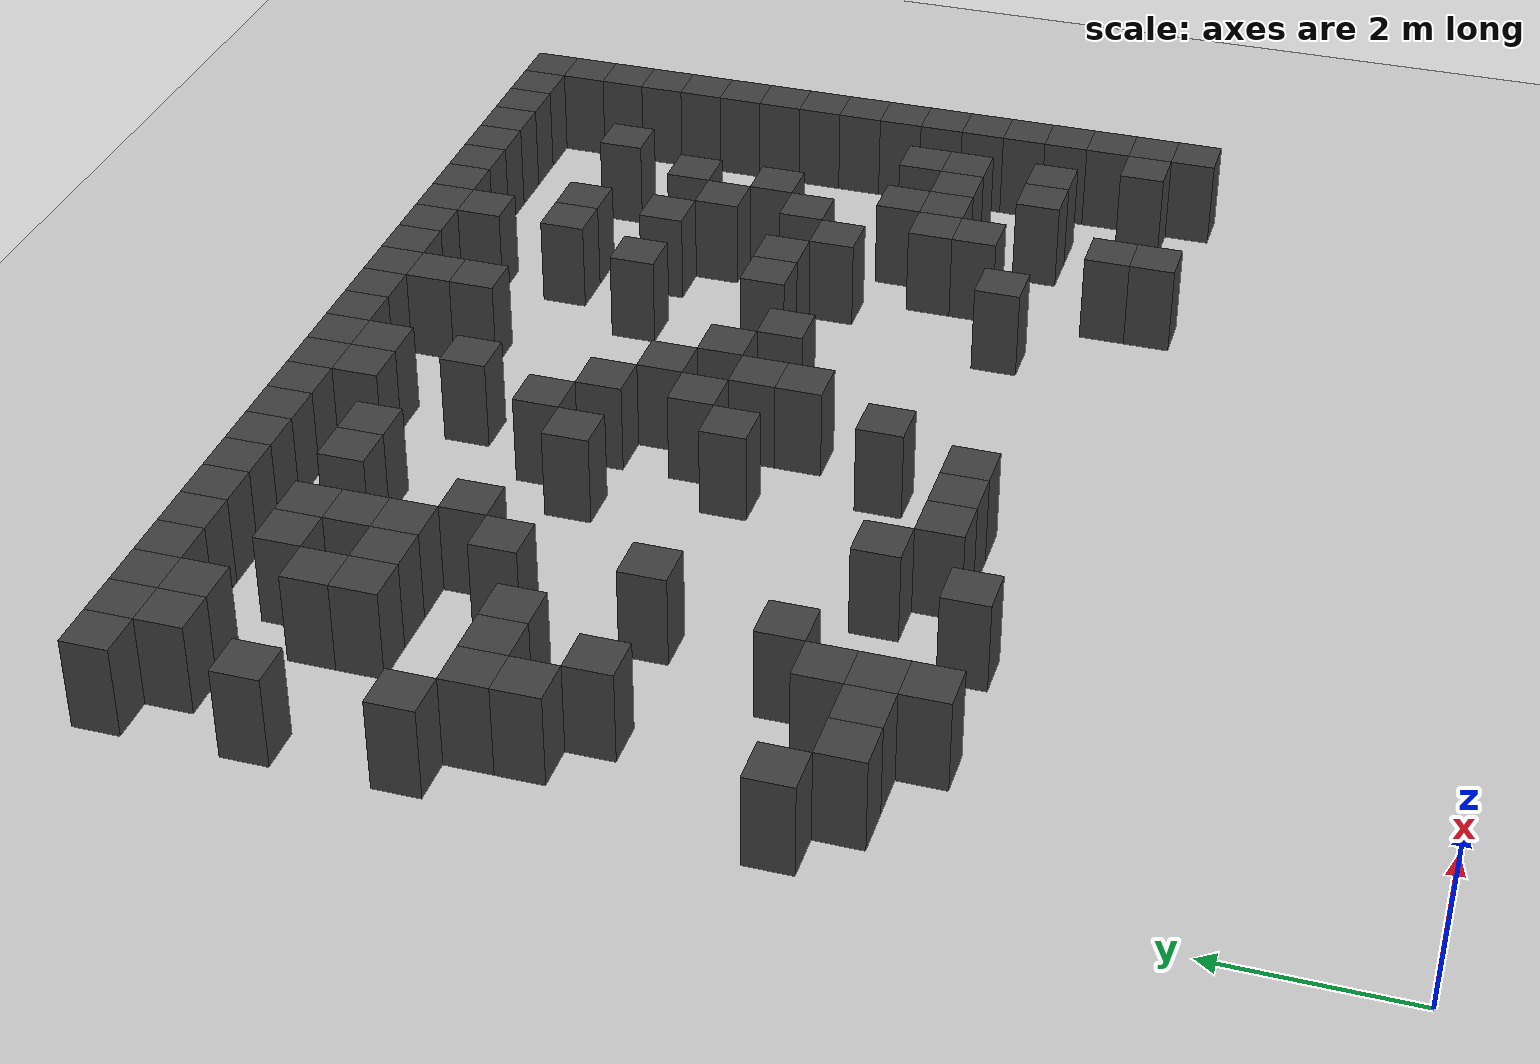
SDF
<sdf version="1.7">
 <world name="map_4492">
  <model name="ground_plane">
   <static>true</static>
   <link name="link">
    <collision name="collision">
     <geometry><plane><normal>0 0 1</normal><size>200 200</size></plane></geometry>
    </collision>
    <visual name="visual">
     <geometry><plane><normal>0 0 1</normal><size>200 200</size></plane></geometry>
     <material><ambient>0.8 0.8 0.8 1</ambient><diffuse>0.8 0.8 0.8 1</diffuse></material>
    </visual>
   </link>
  </model>
  <model name="maze_environment">
   <static>true</static>
   <link name="wall_25">
    <pose>0.250 12.250 0.500 0 0 0</pose>
    <collision name="col"><geometry><box><size>0.5 0.5 1.0</size></box></geometry></collision>
    <visual name="vis">
     <geometry><box><size>0.5 0.5 1.0</size></box></geometry>
     <material><ambient>0.15 0.15 0.15 1</ambient><diffuse>0.25 0.25 0.25 1</diffuse></material>
    </visual>
   </link>
   <link name="wall_26">
    <pose>0.750 12.250 0.500 0 0 0</pose>
    <collision name="col"><geometry><box><size>0.5 0.5 1.0</size></box></geometry></collision>
    <visual name="vis">
     <geometry><box><size>0.5 0.5 1.0</size></box></geometry>
     <material><ambient>0.15 0.15 0.15 1</ambient><diffuse>0.25 0.25 0.25 1</diffuse></material>
    </visual>
   </link>
   <link name="wall_27">
    <pose>1.250 12.250 0.500 0 0 0</pose>
    <collision name="col"><geometry><box><size>0.5 0.5 1.0</size></box></geometry></collision>
    <visual name="vis">
     <geometry><box><size>0.5 0.5 1.0</size></box></geometry>
     <material><ambient>0.15 0.15 0.15 1</ambient><diffuse>0.25 0.25 0.25 1</diffuse></material>
    </visual>
   </link>
   <link name="wall_28">
    <pose>1.750 12.250 0.500 0 0 0</pose>
    <collision name="col"><geometry><box><size>0.5 0.5 1.0</size></box></geometry></collision>
    <visual name="vis">
     <geometry><box><size>0.5 0.5 1.0</size></box></geometry>
     <material><ambient>0.15 0.15 0.15 1</ambient><diffuse>0.25 0.25 0.25 1</diffuse></material>
    </visual>
   </link>
   <link name="wall_29">
    <pose>2.250 12.250 0.500 0 0 0</pose>
    <collision name="col"><geometry><box><size>0.5 0.5 1.0</size></box></geometry></collision>
    <visual name="vis">
     <geometry><box><size>0.5 0.5 1.0</size></box></geometry>
     <material><ambient>0.15 0.15 0.15 1</ambient><diffuse>0.25 0.25 0.25 1</diffuse></material>
    </visual>
   </link>
   <link name="wall_30">
    <pose>2.750 12.250 0.500 0 0 0</pose>
    <collision name="col"><geometry><box><size>0.5 0.5 1.0</size></box></geometry></collision>
    <visual name="vis">
     <geometry><box><size>0.5 0.5 1.0</size></box></geometry>
     <material><ambient>0.15 0.15 0.15 1</ambient><diffuse>0.25 0.25 0.25 1</diffuse></material>
    </visual>
   </link>
   <link name="wall_31">
    <pose>3.250 12.250 0.500 0 0 0</pose>
    <collision name="col"><geometry><box><size>0.5 0.5 1.0</size></box></geometry></collision>
    <visual name="vis">
     <geometry><box><size>0.5 0.5 1.0</size></box></geometry>
     <material><ambient>0.15 0.15 0.15 1</ambient><diffuse>0.25 0.25 0.25 1</diffuse></material>
    </visual>
   </link>
   <link name="wall_32">
    <pose>3.750 12.250 0.500 0 0 0</pose>
    <collision name="col"><geometry><box><size>0.5 0.5 1.0</size></box></geometry></collision>
    <visual name="vis">
     <geometry><box><size>0.5 0.5 1.0</size></box></geometry>
     <material><ambient>0.15 0.15 0.15 1</ambient><diffuse>0.25 0.25 0.25 1</diffuse></material>
    </visual>
   </link>
   <link name="wall_33">
    <pose>4.250 12.250 0.500 0 0 0</pose>
    <collision name="col"><geometry><box><size>0.5 0.5 1.0</size></box></geometry></collision>
    <visual name="vis">
     <geometry><box><size>0.5 0.5 1.0</size></box></geometry>
     <material><ambient>0.15 0.15 0.15 1</ambient><diffuse>0.25 0.25 0.25 1</diffuse></material>
    </visual>
   </link>
   <link name="wall_34">
    <pose>4.750 12.250 0.500 0 0 0</pose>
    <collision name="col"><geometry><box><size>0.5 0.5 1.0</size></box></geometry></collision>
    <visual name="vis">
     <geometry><box><size>0.5 0.5 1.0</size></box></geometry>
     <material><ambient>0.15 0.15 0.15 1</ambient><diffuse>0.25 0.25 0.25 1</diffuse></material>
    </visual>
   </link>
   <link name="wall_35">
    <pose>5.250 12.250 0.500 0 0 0</pose>
    <collision name="col"><geometry><box><size>0.5 0.5 1.0</size></box></geometry></collision>
    <visual name="vis">
     <geometry><box><size>0.5 0.5 1.0</size></box></geometry>
     <material><ambient>0.15 0.15 0.15 1</ambient><diffuse>0.25 0.25 0.25 1</diffuse></material>
    </visual>
   </link>
   <link name="wall_36">
    <pose>5.750 12.250 0.500 0 0 0</pose>
    <collision name="col"><geometry><box><size>0.5 0.5 1.0</size></box></geometry></collision>
    <visual name="vis">
     <geometry><box><size>0.5 0.5 1.0</size></box></geometry>
     <material><ambient>0.15 0.15 0.15 1</ambient><diffuse>0.25 0.25 0.25 1</diffuse></material>
    </visual>
   </link>
   <link name="wall_37">
    <pose>6.250 12.250 0.500 0 0 0</pose>
    <collision name="col"><geometry><box><size>0.5 0.5 1.0</size></box></geometry></collision>
    <visual name="vis">
     <geometry><box><size>0.5 0.5 1.0</size></box></geometry>
     <material><ambient>0.15 0.15 0.15 1</ambient><diffuse>0.25 0.25 0.25 1</diffuse></material>
    </visual>
   </link>
   <link name="wall_38">
    <pose>6.750 12.250 0.500 0 0 0</pose>
    <collision name="col"><geometry><box><size>0.5 0.5 1.0</size></box></geometry></collision>
    <visual name="vis">
     <geometry><box><size>0.5 0.5 1.0</size></box></geometry>
     <material><ambient>0.15 0.15 0.15 1</ambient><diffuse>0.25 0.25 0.25 1</diffuse></material>
    </visual>
   </link>
   <link name="wall_39">
    <pose>7.250 12.250 0.500 0 0 0</pose>
    <collision name="col"><geometry><box><size>0.5 0.5 1.0</size></box></geometry></collision>
    <visual name="vis">
     <geometry><box><size>0.5 0.5 1.0</size></box></geometry>
     <material><ambient>0.15 0.15 0.15 1</ambient><diffuse>0.25 0.25 0.25 1</diffuse></material>
    </visual>
   </link>
   <link name="wall_40">
    <pose>7.750 12.250 0.500 0 0 0</pose>
    <collision name="col"><geometry><box><size>0.5 0.5 1.0</size></box></geometry></collision>
    <visual name="vis">
     <geometry><box><size>0.5 0.5 1.0</size></box></geometry>
     <material><ambient>0.15 0.15 0.15 1</ambient><diffuse>0.25 0.25 0.25 1</diffuse></material>
    </visual>
   </link>
   <link name="wall_41">
    <pose>8.250 12.250 0.500 0 0 0</pose>
    <collision name="col"><geometry><box><size>0.5 0.5 1.0</size></box></geometry></collision>
    <visual name="vis">
     <geometry><box><size>0.5 0.5 1.0</size></box></geometry>
     <material><ambient>0.15 0.15 0.15 1</ambient><diffuse>0.25 0.25 0.25 1</diffuse></material>
    </visual>
   </link>
   <link name="wall_42">
    <pose>8.750 12.250 0.500 0 0 0</pose>
    <collision name="col"><geometry><box><size>0.5 0.5 1.0</size></box></geometry></collision>
    <visual name="vis">
     <geometry><box><size>0.5 0.5 1.0</size></box></geometry>
     <material><ambient>0.15 0.15 0.15 1</ambient><diffuse>0.25 0.25 0.25 1</diffuse></material>
    </visual>
   </link>
   <link name="wall_43">
    <pose>9.250 12.250 0.500 0 0 0</pose>
    <collision name="col"><geometry><box><size>0.5 0.5 1.0</size></box></geometry></collision>
    <visual name="vis">
     <geometry><box><size>0.5 0.5 1.0</size></box></geometry>
     <material><ambient>0.15 0.15 0.15 1</ambient><diffuse>0.25 0.25 0.25 1</diffuse></material>
    </visual>
   </link>
   <link name="wall_44">
    <pose>9.750 12.250 0.500 0 0 0</pose>
    <collision name="col"><geometry><box><size>0.5 0.5 1.0</size></box></geometry></collision>
    <visual name="vis">
     <geometry><box><size>0.5 0.5 1.0</size></box></geometry>
     <material><ambient>0.15 0.15 0.15 1</ambient><diffuse>0.25 0.25 0.25 1</diffuse></material>
    </visual>
   </link>
   <link name="wall_45">
    <pose>10.250 12.250 0.500 0 0 0</pose>
    <collision name="col"><geometry><box><size>0.5 0.5 1.0</size></box></geometry></collision>
    <visual name="vis">
     <geometry><box><size>0.5 0.5 1.0</size></box></geometry>
     <material><ambient>0.15 0.15 0.15 1</ambient><diffuse>0.25 0.25 0.25 1</diffuse></material>
    </visual>
   </link>
   <link name="wall_46">
    <pose>10.750 12.250 0.500 0 0 0</pose>
    <collision name="col"><geometry><box><size>0.5 0.5 1.0</size></box></geometry></collision>
    <visual name="vis">
     <geometry><box><size>0.5 0.5 1.0</size></box></geometry>
     <material><ambient>0.15 0.15 0.15 1</ambient><diffuse>0.25 0.25 0.25 1</diffuse></material>
    </visual>
   </link>
   <link name="wall_47">
    <pose>11.250 12.250 0.500 0 0 0</pose>
    <collision name="col"><geometry><box><size>0.5 0.5 1.0</size></box></geometry></collision>
    <visual name="vis">
     <geometry><box><size>0.5 0.5 1.0</size></box></geometry>
     <material><ambient>0.15 0.15 0.15 1</ambient><diffuse>0.25 0.25 0.25 1</diffuse></material>
    </visual>
   </link>
   <link name="wall_48">
    <pose>11.750 12.250 0.500 0 0 0</pose>
    <collision name="col"><geometry><box><size>0.5 0.5 1.0</size></box></geometry></collision>
    <visual name="vis">
     <geometry><box><size>0.5 0.5 1.0</size></box></geometry>
     <material><ambient>0.15 0.15 0.15 1</ambient><diffuse>0.25 0.25 0.25 1</diffuse></material>
    </visual>
   </link>
   <link name="wall_49">
    <pose>12.250 12.250 0.500 0 0 0</pose>
    <collision name="col"><geometry><box><size>0.5 0.5 1.0</size></box></geometry></collision>
    <visual name="vis">
     <geometry><box><size>0.5 0.5 1.0</size></box></geometry>
     <material><ambient>0.15 0.15 0.15 1</ambient><diffuse>0.25 0.25 0.25 1</diffuse></material>
    </visual>
   </link>
   <link name="wall_56">
    <pose>0.750 11.750 0.500 0 0 0</pose>
    <collision name="col"><geometry><box><size>0.5 0.5 1.0</size></box></geometry></collision>
    <visual name="vis">
     <geometry><box><size>0.5 0.5 1.0</size></box></geometry>
     <material><ambient>0.15 0.15 0.15 1</ambient><diffuse>0.25 0.25 0.25 1</diffuse></material>
    </visual>
   </link>
   <link name="wall_57">
    <pose>1.250 11.750 0.500 0 0 0</pose>
    <collision name="col"><geometry><box><size>0.5 0.5 1.0</size></box></geometry></collision>
    <visual name="vis">
     <geometry><box><size>0.5 0.5 1.0</size></box></geometry>
     <material><ambient>0.15 0.15 0.15 1</ambient><diffuse>0.25 0.25 0.25 1</diffuse></material>
    </visual>
   </link>
   <link name="wall_58">
    <pose>5.250 11.750 0.500 0 0 0</pose>
    <collision name="col"><geometry><box><size>0.5 0.5 1.0</size></box></geometry></collision>
    <visual name="vis">
     <geometry><box><size>0.5 0.5 1.0</size></box></geometry>
     <material><ambient>0.15 0.15 0.15 1</ambient><diffuse>0.25 0.25 0.25 1</diffuse></material>
    </visual>
   </link>
   <link name="wall_59">
    <pose>5.750 11.750 0.500 0 0 0</pose>
    <collision name="col"><geometry><box><size>0.5 0.5 1.0</size></box></geometry></collision>
    <visual name="vis">
     <geometry><box><size>0.5 0.5 1.0</size></box></geometry>
     <material><ambient>0.15 0.15 0.15 1</ambient><diffuse>0.25 0.25 0.25 1</diffuse></material>
    </visual>
   </link>
   <link name="wall_60">
    <pose>7.250 11.750 0.500 0 0 0</pose>
    <collision name="col"><geometry><box><size>0.5 0.5 1.0</size></box></geometry></collision>
    <visual name="vis">
     <geometry><box><size>0.5 0.5 1.0</size></box></geometry>
     <material><ambient>0.15 0.15 0.15 1</ambient><diffuse>0.25 0.25 0.25 1</diffuse></material>
    </visual>
   </link>
   <link name="wall_61">
    <pose>8.750 11.750 0.500 0 0 0</pose>
    <collision name="col"><geometry><box><size>0.5 0.5 1.0</size></box></geometry></collision>
    <visual name="vis">
     <geometry><box><size>0.5 0.5 1.0</size></box></geometry>
     <material><ambient>0.15 0.15 0.15 1</ambient><diffuse>0.25 0.25 0.25 1</diffuse></material>
    </visual>
   </link>
   <link name="wall_62">
    <pose>12.250 11.750 0.500 0 0 0</pose>
    <collision name="col"><geometry><box><size>0.5 0.5 1.0</size></box></geometry></collision>
    <visual name="vis">
     <geometry><box><size>0.5 0.5 1.0</size></box></geometry>
     <material><ambient>0.15 0.15 0.15 1</ambient><diffuse>0.25 0.25 0.25 1</diffuse></material>
    </visual>
   </link>
   <link name="wall_68">
    <pose>2.250 11.250 0.500 0 0 0</pose>
    <collision name="col"><geometry><box><size>0.5 0.5 1.0</size></box></geometry></collision>
    <visual name="vis">
     <geometry><box><size>0.5 0.5 1.0</size></box></geometry>
     <material><ambient>0.15 0.15 0.15 1</ambient><diffuse>0.25 0.25 0.25 1</diffuse></material>
    </visual>
   </link>
   <link name="wall_69">
    <pose>2.750 11.250 0.500 0 0 0</pose>
    <collision name="col"><geometry><box><size>0.5 0.5 1.0</size></box></geometry></collision>
    <visual name="vis">
     <geometry><box><size>0.5 0.5 1.0</size></box></geometry>
     <material><ambient>0.15 0.15 0.15 1</ambient><diffuse>0.25 0.25 0.25 1</diffuse></material>
    </visual>
   </link>
   <link name="wall_70">
    <pose>3.750 11.250 0.500 0 0 0</pose>
    <collision name="col"><geometry><box><size>0.5 0.5 1.0</size></box></geometry></collision>
    <visual name="vis">
     <geometry><box><size>0.5 0.5 1.0</size></box></geometry>
     <material><ambient>0.15 0.15 0.15 1</ambient><diffuse>0.25 0.25 0.25 1</diffuse></material>
    </visual>
   </link>
   <link name="wall_71">
    <pose>4.250 11.250 0.500 0 0 0</pose>
    <collision name="col"><geometry><box><size>0.5 0.5 1.0</size></box></geometry></collision>
    <visual name="vis">
     <geometry><box><size>0.5 0.5 1.0</size></box></geometry>
     <material><ambient>0.15 0.15 0.15 1</ambient><diffuse>0.25 0.25 0.25 1</diffuse></material>
    </visual>
   </link>
   <link name="wall_72">
    <pose>7.250 11.250 0.500 0 0 0</pose>
    <collision name="col"><geometry><box><size>0.5 0.5 1.0</size></box></geometry></collision>
    <visual name="vis">
     <geometry><box><size>0.5 0.5 1.0</size></box></geometry>
     <material><ambient>0.15 0.15 0.15 1</ambient><diffuse>0.25 0.25 0.25 1</diffuse></material>
    </visual>
   </link>
   <link name="wall_73">
    <pose>12.250 11.250 0.500 0 0 0</pose>
    <collision name="col"><geometry><box><size>0.5 0.5 1.0</size></box></geometry></collision>
    <visual name="vis">
     <geometry><box><size>0.5 0.5 1.0</size></box></geometry>
     <material><ambient>0.15 0.15 0.15 1</ambient><diffuse>0.25 0.25 0.25 1</diffuse></material>
    </visual>
   </link>
   <link name="wall_82">
    <pose>0.250 10.750 0.500 0 0 0</pose>
    <collision name="col"><geometry><box><size>0.5 0.5 1.0</size></box></geometry></collision>
    <visual name="vis">
     <geometry><box><size>0.5 0.5 1.0</size></box></geometry>
     <material><ambient>0.15 0.15 0.15 1</ambient><diffuse>0.25 0.25 0.25 1</diffuse></material>
    </visual>
   </link>
   <link name="wall_83">
    <pose>1.750 10.750 0.500 0 0 0</pose>
    <collision name="col"><geometry><box><size>0.5 0.5 1.0</size></box></geometry></collision>
    <visual name="vis">
     <geometry><box><size>0.5 0.5 1.0</size></box></geometry>
     <material><ambient>0.15 0.15 0.15 1</ambient><diffuse>0.25 0.25 0.25 1</diffuse></material>
    </visual>
   </link>
   <link name="wall_84">
    <pose>2.750 10.750 0.500 0 0 0</pose>
    <collision name="col"><geometry><box><size>0.5 0.5 1.0</size></box></geometry></collision>
    <visual name="vis">
     <geometry><box><size>0.5 0.5 1.0</size></box></geometry>
     <material><ambient>0.15 0.15 0.15 1</ambient><diffuse>0.25 0.25 0.25 1</diffuse></material>
    </visual>
   </link>
   <link name="wall_85">
    <pose>5.750 10.750 0.500 0 0 0</pose>
    <collision name="col"><geometry><box><size>0.5 0.5 1.0</size></box></geometry></collision>
    <visual name="vis">
     <geometry><box><size>0.5 0.5 1.0</size></box></geometry>
     <material><ambient>0.15 0.15 0.15 1</ambient><diffuse>0.25 0.25 0.25 1</diffuse></material>
    </visual>
   </link>
   <link name="wall_86">
    <pose>8.750 10.750 0.500 0 0 0</pose>
    <collision name="col"><geometry><box><size>0.5 0.5 1.0</size></box></geometry></collision>
    <visual name="vis">
     <geometry><box><size>0.5 0.5 1.0</size></box></geometry>
     <material><ambient>0.15 0.15 0.15 1</ambient><diffuse>0.25 0.25 0.25 1</diffuse></material>
    </visual>
   </link>
   <link name="wall_87">
    <pose>9.250 10.750 0.500 0 0 0</pose>
    <collision name="col"><geometry><box><size>0.5 0.5 1.0</size></box></geometry></collision>
    <visual name="vis">
     <geometry><box><size>0.5 0.5 1.0</size></box></geometry>
     <material><ambient>0.15 0.15 0.15 1</ambient><diffuse>0.25 0.25 0.25 1</diffuse></material>
    </visual>
   </link>
   <link name="wall_88">
    <pose>10.750 10.750 0.500 0 0 0</pose>
    <collision name="col"><geometry><box><size>0.5 0.5 1.0</size></box></geometry></collision>
    <visual name="vis">
     <geometry><box><size>0.5 0.5 1.0</size></box></geometry>
     <material><ambient>0.15 0.15 0.15 1</ambient><diffuse>0.25 0.25 0.25 1</diffuse></material>
    </visual>
   </link>
   <link name="wall_89">
    <pose>12.250 10.750 0.500 0 0 0</pose>
    <collision name="col"><geometry><box><size>0.5 0.5 1.0</size></box></geometry></collision>
    <visual name="vis">
     <geometry><box><size>0.5 0.5 1.0</size></box></geometry>
     <material><ambient>0.15 0.15 0.15 1</ambient><diffuse>0.25 0.25 0.25 1</diffuse></material>
    </visual>
   </link>
   <link name="wall_98">
    <pose>1.750 10.250 0.500 0 0 0</pose>
    <collision name="col"><geometry><box><size>0.5 0.5 1.0</size></box></geometry></collision>
    <visual name="vis">
     <geometry><box><size>0.5 0.5 1.0</size></box></geometry>
     <material><ambient>0.15 0.15 0.15 1</ambient><diffuse>0.25 0.25 0.25 1</diffuse></material>
    </visual>
   </link>
   <link name="wall_99">
    <pose>2.250 10.250 0.500 0 0 0</pose>
    <collision name="col"><geometry><box><size>0.5 0.5 1.0</size></box></geometry></collision>
    <visual name="vis">
     <geometry><box><size>0.5 0.5 1.0</size></box></geometry>
     <material><ambient>0.15 0.15 0.15 1</ambient><diffuse>0.25 0.25 0.25 1</diffuse></material>
    </visual>
   </link>
   <link name="wall_100">
    <pose>2.750 10.250 0.500 0 0 0</pose>
    <collision name="col"><geometry><box><size>0.5 0.5 1.0</size></box></geometry></collision>
    <visual name="vis">
     <geometry><box><size>0.5 0.5 1.0</size></box></geometry>
     <material><ambient>0.15 0.15 0.15 1</ambient><diffuse>0.25 0.25 0.25 1</diffuse></material>
    </visual>
   </link>
   <link name="wall_101">
    <pose>12.250 10.250 0.500 0 0 0</pose>
    <collision name="col"><geometry><box><size>0.5 0.5 1.0</size></box></geometry></collision>
    <visual name="vis">
     <geometry><box><size>0.5 0.5 1.0</size></box></geometry>
     <material><ambient>0.15 0.15 0.15 1</ambient><diffuse>0.25 0.25 0.25 1</diffuse></material>
    </visual>
   </link>
   <link name="wall_109">
    <pose>3.250 9.750 0.500 0 0 0</pose>
    <collision name="col"><geometry><box><size>0.5 0.5 1.0</size></box></geometry></collision>
    <visual name="vis">
     <geometry><box><size>0.5 0.5 1.0</size></box></geometry>
     <material><ambient>0.15 0.15 0.15 1</ambient><diffuse>0.25 0.25 0.25 1</diffuse></material>
    </visual>
   </link>
   <link name="wall_110">
    <pose>5.250 9.750 0.500 0 0 0</pose>
    <collision name="col"><geometry><box><size>0.5 0.5 1.0</size></box></geometry></collision>
    <visual name="vis">
     <geometry><box><size>0.5 0.5 1.0</size></box></geometry>
     <material><ambient>0.15 0.15 0.15 1</ambient><diffuse>0.25 0.25 0.25 1</diffuse></material>
    </visual>
   </link>
   <link name="wall_111">
    <pose>8.250 9.750 0.500 0 0 0</pose>
    <collision name="col"><geometry><box><size>0.5 0.5 1.0</size></box></geometry></collision>
    <visual name="vis">
     <geometry><box><size>0.5 0.5 1.0</size></box></geometry>
     <material><ambient>0.15 0.15 0.15 1</ambient><diffuse>0.25 0.25 0.25 1</diffuse></material>
    </visual>
   </link>
   <link name="wall_112">
    <pose>9.250 9.750 0.500 0 0 0</pose>
    <collision name="col"><geometry><box><size>0.5 0.5 1.0</size></box></geometry></collision>
    <visual name="vis">
     <geometry><box><size>0.5 0.5 1.0</size></box></geometry>
     <material><ambient>0.15 0.15 0.15 1</ambient><diffuse>0.25 0.25 0.25 1</diffuse></material>
    </visual>
   </link>
   <link name="wall_113">
    <pose>10.250 9.750 0.500 0 0 0</pose>
    <collision name="col"><geometry><box><size>0.5 0.5 1.0</size></box></geometry></collision>
    <visual name="vis">
     <geometry><box><size>0.5 0.5 1.0</size></box></geometry>
     <material><ambient>0.15 0.15 0.15 1</ambient><diffuse>0.25 0.25 0.25 1</diffuse></material>
    </visual>
   </link>
   <link name="wall_114">
    <pose>12.250 9.750 0.500 0 0 0</pose>
    <collision name="col"><geometry><box><size>0.5 0.5 1.0</size></box></geometry></collision>
    <visual name="vis">
     <geometry><box><size>0.5 0.5 1.0</size></box></geometry>
     <material><ambient>0.15 0.15 0.15 1</ambient><diffuse>0.25 0.25 0.25 1</diffuse></material>
    </visual>
   </link>
   <link name="wall_120">
    <pose>0.250 9.250 0.500 0 0 0</pose>
    <collision name="col"><geometry><box><size>0.5 0.5 1.0</size></box></geometry></collision>
    <visual name="vis">
     <geometry><box><size>0.5 0.5 1.0</size></box></geometry>
     <material><ambient>0.15 0.15 0.15 1</ambient><diffuse>0.25 0.25 0.25 1</diffuse></material>
    </visual>
   </link>
   <link name="wall_121">
    <pose>2.750 9.250 0.500 0 0 0</pose>
    <collision name="col"><geometry><box><size>0.5 0.5 1.0</size></box></geometry></collision>
    <visual name="vis">
     <geometry><box><size>0.5 0.5 1.0</size></box></geometry>
     <material><ambient>0.15 0.15 0.15 1</ambient><diffuse>0.25 0.25 0.25 1</diffuse></material>
    </visual>
   </link>
   <link name="wall_122">
    <pose>4.750 9.250 0.500 0 0 0</pose>
    <collision name="col"><geometry><box><size>0.5 0.5 1.0</size></box></geometry></collision>
    <visual name="vis">
     <geometry><box><size>0.5 0.5 1.0</size></box></geometry>
     <material><ambient>0.15 0.15 0.15 1</ambient><diffuse>0.25 0.25 0.25 1</diffuse></material>
    </visual>
   </link>
   <link name="wall_123">
    <pose>5.750 9.250 0.500 0 0 0</pose>
    <collision name="col"><geometry><box><size>0.5 0.5 1.0</size></box></geometry></collision>
    <visual name="vis">
     <geometry><box><size>0.5 0.5 1.0</size></box></geometry>
     <material><ambient>0.15 0.15 0.15 1</ambient><diffuse>0.25 0.25 0.25 1</diffuse></material>
    </visual>
   </link>
   <link name="wall_124">
    <pose>9.750 9.250 0.500 0 0 0</pose>
    <collision name="col"><geometry><box><size>0.5 0.5 1.0</size></box></geometry></collision>
    <visual name="vis">
     <geometry><box><size>0.5 0.5 1.0</size></box></geometry>
     <material><ambient>0.15 0.15 0.15 1</ambient><diffuse>0.25 0.25 0.25 1</diffuse></material>
    </visual>
   </link>
   <link name="wall_125">
    <pose>12.250 9.250 0.500 0 0 0</pose>
    <collision name="col"><geometry><box><size>0.5 0.5 1.0</size></box></geometry></collision>
    <visual name="vis">
     <geometry><box><size>0.5 0.5 1.0</size></box></geometry>
     <material><ambient>0.15 0.15 0.15 1</ambient><diffuse>0.25 0.25 0.25 1</diffuse></material>
    </visual>
   </link>
   <link name="wall_134">
    <pose>0.750 8.750 0.500 0 0 0</pose>
    <collision name="col"><geometry><box><size>0.5 0.5 1.0</size></box></geometry></collision>
    <visual name="vis">
     <geometry><box><size>0.5 0.5 1.0</size></box></geometry>
     <material><ambient>0.15 0.15 0.15 1</ambient><diffuse>0.25 0.25 0.25 1</diffuse></material>
    </visual>
   </link>
   <link name="wall_135">
    <pose>1.250 8.750 0.500 0 0 0</pose>
    <collision name="col"><geometry><box><size>0.5 0.5 1.0</size></box></geometry></collision>
    <visual name="vis">
     <geometry><box><size>0.5 0.5 1.0</size></box></geometry>
     <material><ambient>0.15 0.15 0.15 1</ambient><diffuse>0.25 0.25 0.25 1</diffuse></material>
    </visual>
   </link>
   <link name="wall_136">
    <pose>1.750 8.750 0.500 0 0 0</pose>
    <collision name="col"><geometry><box><size>0.5 0.5 1.0</size></box></geometry></collision>
    <visual name="vis">
     <geometry><box><size>0.5 0.5 1.0</size></box></geometry>
     <material><ambient>0.15 0.15 0.15 1</ambient><diffuse>0.25 0.25 0.25 1</diffuse></material>
    </visual>
   </link>
   <link name="wall_137">
    <pose>6.250 8.750 0.500 0 0 0</pose>
    <collision name="col"><geometry><box><size>0.5 0.5 1.0</size></box></geometry></collision>
    <visual name="vis">
     <geometry><box><size>0.5 0.5 1.0</size></box></geometry>
     <material><ambient>0.15 0.15 0.15 1</ambient><diffuse>0.25 0.25 0.25 1</diffuse></material>
    </visual>
   </link>
   <link name="wall_138">
    <pose>10.250 8.750 0.500 0 0 0</pose>
    <collision name="col"><geometry><box><size>0.5 0.5 1.0</size></box></geometry></collision>
    <visual name="vis">
     <geometry><box><size>0.5 0.5 1.0</size></box></geometry>
     <material><ambient>0.15 0.15 0.15 1</ambient><diffuse>0.25 0.25 0.25 1</diffuse></material>
    </visual>
   </link>
   <link name="wall_139">
    <pose>12.250 8.750 0.500 0 0 0</pose>
    <collision name="col"><geometry><box><size>0.5 0.5 1.0</size></box></geometry></collision>
    <visual name="vis">
     <geometry><box><size>0.5 0.5 1.0</size></box></geometry>
     <material><ambient>0.15 0.15 0.15 1</ambient><diffuse>0.25 0.25 0.25 1</diffuse></material>
    </visual>
   </link>
   <link name="wall_149">
    <pose>0.750 8.250 0.500 0 0 0</pose>
    <collision name="col"><geometry><box><size>0.5 0.5 1.0</size></box></geometry></collision>
    <visual name="vis">
     <geometry><box><size>0.5 0.5 1.0</size></box></geometry>
     <material><ambient>0.15 0.15 0.15 1</ambient><diffuse>0.25 0.25 0.25 1</diffuse></material>
    </visual>
   </link>
   <link name="wall_150">
    <pose>5.750 8.250 0.500 0 0 0</pose>
    <collision name="col"><geometry><box><size>0.5 0.5 1.0</size></box></geometry></collision>
    <visual name="vis">
     <geometry><box><size>0.5 0.5 1.0</size></box></geometry>
     <material><ambient>0.15 0.15 0.15 1</ambient><diffuse>0.25 0.25 0.25 1</diffuse></material>
    </visual>
   </link>
   <link name="wall_151">
    <pose>6.750 8.250 0.500 0 0 0</pose>
    <collision name="col"><geometry><box><size>0.5 0.5 1.0</size></box></geometry></collision>
    <visual name="vis">
     <geometry><box><size>0.5 0.5 1.0</size></box></geometry>
     <material><ambient>0.15 0.15 0.15 1</ambient><diffuse>0.25 0.25 0.25 1</diffuse></material>
    </visual>
   </link>
   <link name="wall_152">
    <pose>8.250 8.250 0.500 0 0 0</pose>
    <collision name="col"><geometry><box><size>0.5 0.5 1.0</size></box></geometry></collision>
    <visual name="vis">
     <geometry><box><size>0.5 0.5 1.0</size></box></geometry>
     <material><ambient>0.15 0.15 0.15 1</ambient><diffuse>0.25 0.25 0.25 1</diffuse></material>
    </visual>
   </link>
   <link name="wall_153">
    <pose>8.750 8.250 0.500 0 0 0</pose>
    <collision name="col"><geometry><box><size>0.5 0.5 1.0</size></box></geometry></collision>
    <visual name="vis">
     <geometry><box><size>0.5 0.5 1.0</size></box></geometry>
     <material><ambient>0.15 0.15 0.15 1</ambient><diffuse>0.25 0.25 0.25 1</diffuse></material>
    </visual>
   </link>
   <link name="wall_154">
    <pose>9.750 8.250 0.500 0 0 0</pose>
    <collision name="col"><geometry><box><size>0.5 0.5 1.0</size></box></geometry></collision>
    <visual name="vis">
     <geometry><box><size>0.5 0.5 1.0</size></box></geometry>
     <material><ambient>0.15 0.15 0.15 1</ambient><diffuse>0.25 0.25 0.25 1</diffuse></material>
    </visual>
   </link>
   <link name="wall_155">
    <pose>12.250 8.250 0.500 0 0 0</pose>
    <collision name="col"><geometry><box><size>0.5 0.5 1.0</size></box></geometry></collision>
    <visual name="vis">
     <geometry><box><size>0.5 0.5 1.0</size></box></geometry>
     <material><ambient>0.15 0.15 0.15 1</ambient><diffuse>0.25 0.25 0.25 1</diffuse></material>
    </visual>
   </link>
   <link name="wall_163">
    <pose>1.250 7.750 0.500 0 0 0</pose>
    <collision name="col"><geometry><box><size>0.5 0.5 1.0</size></box></geometry></collision>
    <visual name="vis">
     <geometry><box><size>0.5 0.5 1.0</size></box></geometry>
     <material><ambient>0.15 0.15 0.15 1</ambient><diffuse>0.25 0.25 0.25 1</diffuse></material>
    </visual>
   </link>
   <link name="wall_164">
    <pose>2.750 7.750 0.500 0 0 0</pose>
    <collision name="col"><geometry><box><size>0.5 0.5 1.0</size></box></geometry></collision>
    <visual name="vis">
     <geometry><box><size>0.5 0.5 1.0</size></box></geometry>
     <material><ambient>0.15 0.15 0.15 1</ambient><diffuse>0.25 0.25 0.25 1</diffuse></material>
    </visual>
   </link>
   <link name="wall_165">
    <pose>5.250 7.750 0.500 0 0 0</pose>
    <collision name="col"><geometry><box><size>0.5 0.5 1.0</size></box></geometry></collision>
    <visual name="vis">
     <geometry><box><size>0.5 0.5 1.0</size></box></geometry>
     <material><ambient>0.15 0.15 0.15 1</ambient><diffuse>0.25 0.25 0.25 1</diffuse></material>
    </visual>
   </link>
   <link name="wall_166">
    <pose>6.250 7.750 0.500 0 0 0</pose>
    <collision name="col"><geometry><box><size>0.5 0.5 1.0</size></box></geometry></collision>
    <visual name="vis">
     <geometry><box><size>0.5 0.5 1.0</size></box></geometry>
     <material><ambient>0.15 0.15 0.15 1</ambient><diffuse>0.25 0.25 0.25 1</diffuse></material>
    </visual>
   </link>
   <link name="wall_167">
    <pose>7.250 7.750 0.500 0 0 0</pose>
    <collision name="col"><geometry><box><size>0.5 0.5 1.0</size></box></geometry></collision>
    <visual name="vis">
     <geometry><box><size>0.5 0.5 1.0</size></box></geometry>
     <material><ambient>0.15 0.15 0.15 1</ambient><diffuse>0.25 0.25 0.25 1</diffuse></material>
    </visual>
   </link>
   <link name="wall_168">
    <pose>9.250 7.750 0.500 0 0 0</pose>
    <collision name="col"><geometry><box><size>0.5 0.5 1.0</size></box></geometry></collision>
    <visual name="vis">
     <geometry><box><size>0.5 0.5 1.0</size></box></geometry>
     <material><ambient>0.15 0.15 0.15 1</ambient><diffuse>0.25 0.25 0.25 1</diffuse></material>
    </visual>
   </link>
   <link name="wall_169">
    <pose>12.250 7.750 0.500 0 0 0</pose>
    <collision name="col"><geometry><box><size>0.5 0.5 1.0</size></box></geometry></collision>
    <visual name="vis">
     <geometry><box><size>0.5 0.5 1.0</size></box></geometry>
     <material><ambient>0.15 0.15 0.15 1</ambient><diffuse>0.25 0.25 0.25 1</diffuse></material>
    </visual>
   </link>
   <link name="wall_175">
    <pose>6.250 7.250 0.500 0 0 0</pose>
    <collision name="col"><geometry><box><size>0.5 0.5 1.0</size></box></geometry></collision>
    <visual name="vis">
     <geometry><box><size>0.5 0.5 1.0</size></box></geometry>
     <material><ambient>0.15 0.15 0.15 1</ambient><diffuse>0.25 0.25 0.25 1</diffuse></material>
    </visual>
   </link>
   <link name="wall_176">
    <pose>10.250 7.250 0.500 0 0 0</pose>
    <collision name="col"><geometry><box><size>0.5 0.5 1.0</size></box></geometry></collision>
    <visual name="vis">
     <geometry><box><size>0.5 0.5 1.0</size></box></geometry>
     <material><ambient>0.15 0.15 0.15 1</ambient><diffuse>0.25 0.25 0.25 1</diffuse></material>
    </visual>
   </link>
   <link name="wall_177">
    <pose>11.250 7.250 0.500 0 0 0</pose>
    <collision name="col"><geometry><box><size>0.5 0.5 1.0</size></box></geometry></collision>
    <visual name="vis">
     <geometry><box><size>0.5 0.5 1.0</size></box></geometry>
     <material><ambient>0.15 0.15 0.15 1</ambient><diffuse>0.25 0.25 0.25 1</diffuse></material>
    </visual>
   </link>
   <link name="wall_178">
    <pose>12.250 7.250 0.500 0 0 0</pose>
    <collision name="col"><geometry><box><size>0.5 0.5 1.0</size></box></geometry></collision>
    <visual name="vis">
     <geometry><box><size>0.5 0.5 1.0</size></box></geometry>
     <material><ambient>0.15 0.15 0.15 1</ambient><diffuse>0.25 0.25 0.25 1</diffuse></material>
    </visual>
   </link>
   <link name="wall_183">
    <pose>9.750 6.750 0.500 0 0 0</pose>
    <collision name="col"><geometry><box><size>0.5 0.5 1.0</size></box></geometry></collision>
    <visual name="vis">
     <geometry><box><size>0.5 0.5 1.0</size></box></geometry>
     <material><ambient>0.15 0.15 0.15 1</ambient><diffuse>0.25 0.25 0.25 1</diffuse></material>
    </visual>
   </link>
   <link name="wall_184">
    <pose>10.250 6.750 0.500 0 0 0</pose>
    <collision name="col"><geometry><box><size>0.5 0.5 1.0</size></box></geometry></collision>
    <visual name="vis">
     <geometry><box><size>0.5 0.5 1.0</size></box></geometry>
     <material><ambient>0.15 0.15 0.15 1</ambient><diffuse>0.25 0.25 0.25 1</diffuse></material>
    </visual>
   </link>
   <link name="wall_185">
    <pose>10.750 6.750 0.500 0 0 0</pose>
    <collision name="col"><geometry><box><size>0.5 0.5 1.0</size></box></geometry></collision>
    <visual name="vis">
     <geometry><box><size>0.5 0.5 1.0</size></box></geometry>
     <material><ambient>0.15 0.15 0.15 1</ambient><diffuse>0.25 0.25 0.25 1</diffuse></material>
    </visual>
   </link>
   <link name="wall_186">
    <pose>11.250 6.750 0.500 0 0 0</pose>
    <collision name="col"><geometry><box><size>0.5 0.5 1.0</size></box></geometry></collision>
    <visual name="vis">
     <geometry><box><size>0.5 0.5 1.0</size></box></geometry>
     <material><ambient>0.15 0.15 0.15 1</ambient><diffuse>0.25 0.25 0.25 1</diffuse></material>
    </visual>
   </link>
   <link name="wall_187">
    <pose>12.250 6.750 0.500 0 0 0</pose>
    <collision name="col"><geometry><box><size>0.5 0.5 1.0</size></box></geometry></collision>
    <visual name="vis">
     <geometry><box><size>0.5 0.5 1.0</size></box></geometry>
     <material><ambient>0.15 0.15 0.15 1</ambient><diffuse>0.25 0.25 0.25 1</diffuse></material>
    </visual>
   </link>
   <link name="wall_196">
    <pose>2.250 6.250 0.500 0 0 0</pose>
    <collision name="col"><geometry><box><size>0.5 0.5 1.0</size></box></geometry></collision>
    <visual name="vis">
     <geometry><box><size>0.5 0.5 1.0</size></box></geometry>
     <material><ambient>0.15 0.15 0.15 1</ambient><diffuse>0.25 0.25 0.25 1</diffuse></material>
    </visual>
   </link>
   <link name="wall_197">
    <pose>5.750 6.250 0.500 0 0 0</pose>
    <collision name="col"><geometry><box><size>0.5 0.5 1.0</size></box></geometry></collision>
    <visual name="vis">
     <geometry><box><size>0.5 0.5 1.0</size></box></geometry>
     <material><ambient>0.15 0.15 0.15 1</ambient><diffuse>0.25 0.25 0.25 1</diffuse></material>
    </visual>
   </link>
   <link name="wall_198">
    <pose>9.750 6.250 0.500 0 0 0</pose>
    <collision name="col"><geometry><box><size>0.5 0.5 1.0</size></box></geometry></collision>
    <visual name="vis">
     <geometry><box><size>0.5 0.5 1.0</size></box></geometry>
     <material><ambient>0.15 0.15 0.15 1</ambient><diffuse>0.25 0.25 0.25 1</diffuse></material>
    </visual>
   </link>
   <link name="wall_199">
    <pose>12.250 6.250 0.500 0 0 0</pose>
    <collision name="col"><geometry><box><size>0.5 0.5 1.0</size></box></geometry></collision>
    <visual name="vis">
     <geometry><box><size>0.5 0.5 1.0</size></box></geometry>
     <material><ambient>0.15 0.15 0.15 1</ambient><diffuse>0.25 0.25 0.25 1</diffuse></material>
    </visual>
   </link>
   <link name="wall_207">
    <pose>0.250 5.750 0.500 0 0 0</pose>
    <collision name="col"><geometry><box><size>0.5 0.5 1.0</size></box></geometry></collision>
    <visual name="vis">
     <geometry><box><size>0.5 0.5 1.0</size></box></geometry>
     <material><ambient>0.15 0.15 0.15 1</ambient><diffuse>0.25 0.25 0.25 1</diffuse></material>
    </visual>
   </link>
   <link name="wall_208">
    <pose>1.750 5.750 0.500 0 0 0</pose>
    <collision name="col"><geometry><box><size>0.5 0.5 1.0</size></box></geometry></collision>
    <visual name="vis">
     <geometry><box><size>0.5 0.5 1.0</size></box></geometry>
     <material><ambient>0.15 0.15 0.15 1</ambient><diffuse>0.25 0.25 0.25 1</diffuse></material>
    </visual>
   </link>
   <link name="wall_209">
    <pose>3.750 5.750 0.500 0 0 0</pose>
    <collision name="col"><geometry><box><size>0.5 0.5 1.0</size></box></geometry></collision>
    <visual name="vis">
     <geometry><box><size>0.5 0.5 1.0</size></box></geometry>
     <material><ambient>0.15 0.15 0.15 1</ambient><diffuse>0.25 0.25 0.25 1</diffuse></material>
    </visual>
   </link>
   <link name="wall_210">
    <pose>8.750 5.750 0.500 0 0 0</pose>
    <collision name="col"><geometry><box><size>0.5 0.5 1.0</size></box></geometry></collision>
    <visual name="vis">
     <geometry><box><size>0.5 0.5 1.0</size></box></geometry>
     <material><ambient>0.15 0.15 0.15 1</ambient><diffuse>0.25 0.25 0.25 1</diffuse></material>
    </visual>
   </link>
   <link name="wall_211">
    <pose>10.750 5.750 0.500 0 0 0</pose>
    <collision name="col"><geometry><box><size>0.5 0.5 1.0</size></box></geometry></collision>
    <visual name="vis">
     <geometry><box><size>0.5 0.5 1.0</size></box></geometry>
     <material><ambient>0.15 0.15 0.15 1</ambient><diffuse>0.25 0.25 0.25 1</diffuse></material>
    </visual>
   </link>
   <link name="wall_212">
    <pose>11.250 5.750 0.500 0 0 0</pose>
    <collision name="col"><geometry><box><size>0.5 0.5 1.0</size></box></geometry></collision>
    <visual name="vis">
     <geometry><box><size>0.5 0.5 1.0</size></box></geometry>
     <material><ambient>0.15 0.15 0.15 1</ambient><diffuse>0.25 0.25 0.25 1</diffuse></material>
    </visual>
   </link>
   <link name="wall_213">
    <pose>12.250 5.750 0.500 0 0 0</pose>
    <collision name="col"><geometry><box><size>0.5 0.5 1.0</size></box></geometry></collision>
    <visual name="vis">
     <geometry><box><size>0.5 0.5 1.0</size></box></geometry>
     <material><ambient>0.15 0.15 0.15 1</ambient><diffuse>0.25 0.25 0.25 1</diffuse></material>
    </visual>
   </link>
   <link name="wall_219">
    <pose>0.750 5.250 0.500 0 0 0</pose>
    <collision name="col"><geometry><box><size>0.5 0.5 1.0</size></box></geometry></collision>
    <visual name="vis">
     <geometry><box><size>0.5 0.5 1.0</size></box></geometry>
     <material><ambient>0.15 0.15 0.15 1</ambient><diffuse>0.25 0.25 0.25 1</diffuse></material>
    </visual>
   </link>
   <link name="wall_220">
    <pose>1.250 5.250 0.500 0 0 0</pose>
    <collision name="col"><geometry><box><size>0.5 0.5 1.0</size></box></geometry></collision>
    <visual name="vis">
     <geometry><box><size>0.5 0.5 1.0</size></box></geometry>
     <material><ambient>0.15 0.15 0.15 1</ambient><diffuse>0.25 0.25 0.25 1</diffuse></material>
    </visual>
   </link>
   <link name="wall_221">
    <pose>1.750 5.250 0.500 0 0 0</pose>
    <collision name="col"><geometry><box><size>0.5 0.5 1.0</size></box></geometry></collision>
    <visual name="vis">
     <geometry><box><size>0.5 0.5 1.0</size></box></geometry>
     <material><ambient>0.15 0.15 0.15 1</ambient><diffuse>0.25 0.25 0.25 1</diffuse></material>
    </visual>
   </link>
   <link name="wall_222">
    <pose>4.250 5.250 0.500 0 0 0</pose>
    <collision name="col"><geometry><box><size>0.5 0.5 1.0</size></box></geometry></collision>
    <visual name="vis">
     <geometry><box><size>0.5 0.5 1.0</size></box></geometry>
     <material><ambient>0.15 0.15 0.15 1</ambient><diffuse>0.25 0.25 0.25 1</diffuse></material>
    </visual>
   </link>
   <link name="wall_223">
    <pose>4.750 5.250 0.500 0 0 0</pose>
    <collision name="col"><geometry><box><size>0.5 0.5 1.0</size></box></geometry></collision>
    <visual name="vis">
     <geometry><box><size>0.5 0.5 1.0</size></box></geometry>
     <material><ambient>0.15 0.15 0.15 1</ambient><diffuse>0.25 0.25 0.25 1</diffuse></material>
    </visual>
   </link>
   <link name="wall_224">
    <pose>5.250 5.250 0.500 0 0 0</pose>
    <collision name="col"><geometry><box><size>0.5 0.5 1.0</size></box></geometry></collision>
    <visual name="vis">
     <geometry><box><size>0.5 0.5 1.0</size></box></geometry>
     <material><ambient>0.15 0.15 0.15 1</ambient><diffuse>0.25 0.25 0.25 1</diffuse></material>
    </visual>
   </link>
   <link name="wall_225">
    <pose>12.250 5.250 0.500 0 0 0</pose>
    <collision name="col"><geometry><box><size>0.5 0.5 1.0</size></box></geometry></collision>
    <visual name="vis">
     <geometry><box><size>0.5 0.5 1.0</size></box></geometry>
     <material><ambient>0.15 0.15 0.15 1</ambient><diffuse>0.25 0.25 0.25 1</diffuse></material>
    </visual>
   </link>
   <link name="wall_230">
    <pose>1.750 4.750 0.500 0 0 0</pose>
    <collision name="col"><geometry><box><size>0.5 0.5 1.0</size></box></geometry></collision>
    <visual name="vis">
     <geometry><box><size>0.5 0.5 1.0</size></box></geometry>
     <material><ambient>0.15 0.15 0.15 1</ambient><diffuse>0.25 0.25 0.25 1</diffuse></material>
    </visual>
   </link>
   <link name="wall_231">
    <pose>3.250 4.750 0.500 0 0 0</pose>
    <collision name="col"><geometry><box><size>0.5 0.5 1.0</size></box></geometry></collision>
    <visual name="vis">
     <geometry><box><size>0.5 0.5 1.0</size></box></geometry>
     <material><ambient>0.15 0.15 0.15 1</ambient><diffuse>0.25 0.25 0.25 1</diffuse></material>
    </visual>
   </link>
   <link name="wall_232">
    <pose>9.750 4.750 0.500 0 0 0</pose>
    <collision name="col"><geometry><box><size>0.5 0.5 1.0</size></box></geometry></collision>
    <visual name="vis">
     <geometry><box><size>0.5 0.5 1.0</size></box></geometry>
     <material><ambient>0.15 0.15 0.15 1</ambient><diffuse>0.25 0.25 0.25 1</diffuse></material>
    </visual>
   </link>
   <link name="wall_233">
    <pose>11.750 4.750 0.500 0 0 0</pose>
    <collision name="col"><geometry><box><size>0.5 0.5 1.0</size></box></geometry></collision>
    <visual name="vis">
     <geometry><box><size>0.5 0.5 1.0</size></box></geometry>
     <material><ambient>0.15 0.15 0.15 1</ambient><diffuse>0.25 0.25 0.25 1</diffuse></material>
    </visual>
   </link>
   <link name="wall_234">
    <pose>12.250 4.750 0.500 0 0 0</pose>
    <collision name="col"><geometry><box><size>0.5 0.5 1.0</size></box></geometry></collision>
    <visual name="vis">
     <geometry><box><size>0.5 0.5 1.0</size></box></geometry>
     <material><ambient>0.15 0.15 0.15 1</ambient><diffuse>0.25 0.25 0.25 1</diffuse></material>
    </visual>
   </link>
   <link name="wall_247">
    <pose>9.750 4.250 0.500 0 0 0</pose>
    <collision name="col"><geometry><box><size>0.5 0.5 1.0</size></box></geometry></collision>
    <visual name="vis">
     <geometry><box><size>0.5 0.5 1.0</size></box></geometry>
     <material><ambient>0.15 0.15 0.15 1</ambient><diffuse>0.25 0.25 0.25 1</diffuse></material>
    </visual>
   </link>
   <link name="wall_248">
    <pose>12.250 4.250 0.500 0 0 0</pose>
    <collision name="col"><geometry><box><size>0.5 0.5 1.0</size></box></geometry></collision>
    <visual name="vis">
     <geometry><box><size>0.5 0.5 1.0</size></box></geometry>
     <material><ambient>0.15 0.15 0.15 1</ambient><diffuse>0.25 0.25 0.25 1</diffuse></material>
    </visual>
   </link>
  </model>
 </world>
</sdf>
